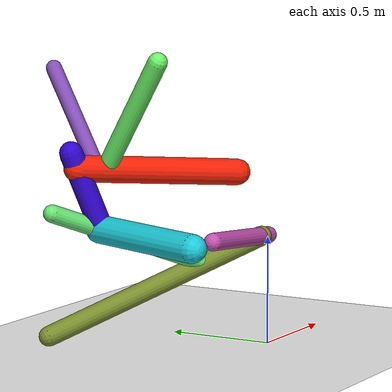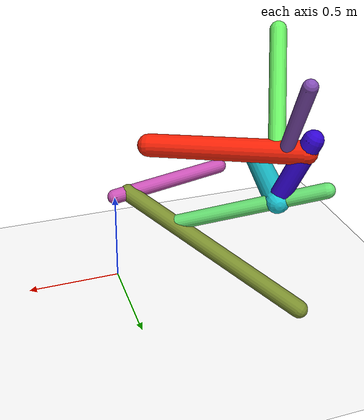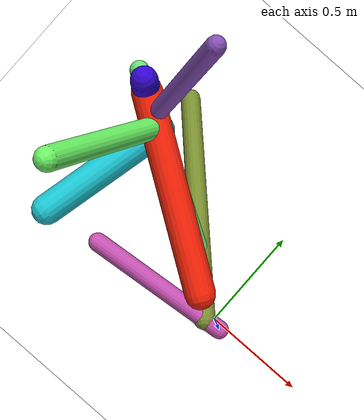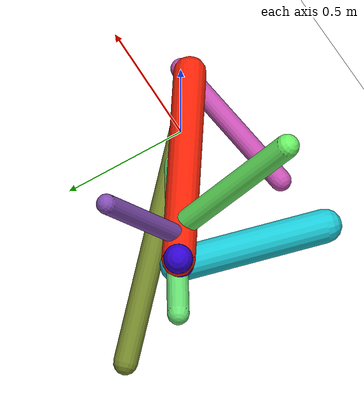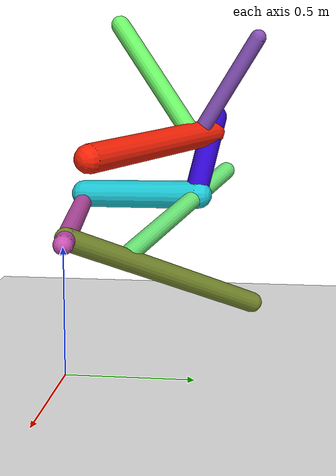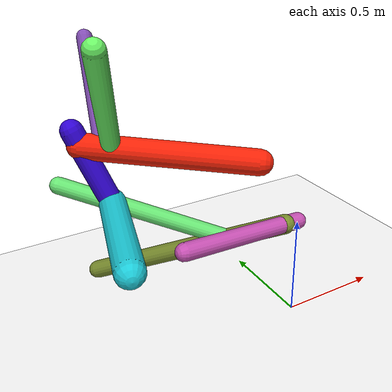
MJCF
<mujoco model="morphology">
  <option timestep="0.01"/>
  <default>
    <default class="/"/>
    <default class="0/"/>
    <default class="0/1/"/>
    <default class="0/1/2/"/>
    <default class="0/1/2/3/"/>
    <default class="0/1/2/3/4/"/>
    <default class="0/1/2/3/4/5/"/>
    <default class="0/1/2/3/4/5/6/"/>
    <default class="0/1/2/3/4/5/7/"/>
  </default>
  <asset>
    <texture name="texplane" type="2d" builtin="checker" rgb1="0.10000000000000001 0.20000000000000001 0.29999999999999999" rgb2="0.20000000000000001 0.29999999999999999 0.40000000000000002" width="300" height="300"/>
    <material name="MatPlane" class="/" texture="texplane" texrepeat="20 20" specular="1" shininess="1" reflectance="0.5"/>
  </asset>
  <worldbody>
    <light name="//unnamed_light_0" class="/" directional="true" pos="0 0 1.5" dir="0 0 -1.3" cutoff="100" exponent="1" diffuse="1 1 1" specular="0.10000000000000001 0.10000000000000001 0.10000000000000001"/>
    <geom name="ground" class="/" type="plane" size="15 15 0.5" material="MatPlane" rgba="1 1 1 1"/>
    <site name="body" class="/" size="9.9999999999999995e-07 9.9999999999999995e-07 9.9999999999999995e-07" pos="0 0 0.50926620364189146"/>
    <body pos="0 0 0.50926620364189146" name="0/">
      <freejoint name="0/"/>
      <geom name="0/geom" class="0/" type="capsule" contype="1" conaffinity="1" condim="3" size="0.039697990379565742" rgba="0.77191309984216805 0.31339932554767991 0.69538231415305096 1" friction="0.59999999999999998 0.10000000000000001 0.10000000000000001" fromto="0 0 0 -0.61678214636162665 -0.055614258357240542 0.062218150887570434"/>
      <site name="0/end0" class="0/" size="0.0050000000000000001" pos="-0.61678214636162665 -0.055614258357240542 0.062218150887570434"/>
      <site name="0/attach1" class="0/" size="9.9999999999999995e-07 9.9999999999999995e-07 9.9999999999999995e-07" pos="-0.076657900007399082 -0.0069121200755953753 0.0077328969677864529"/>
      <body pos="-0.076657900007399082 -0.0069121200755953753 0.0077328969677864529" name="0/1/">
        <joint name="0/1/joint/" class="0/" type="hinge" axis="0 0 1" limited="true" range="-51.834454337904951 51.834454337904951"/>
        <geom name="0/1/geom" class="0/1/" type="capsule" contype="1" conaffinity="1" condim="3" size="0.046199711530168316" rgba="0.46847478030595613 0.54351536301901071 0.17514898165833404 1" friction="0.59999999999999998 0.10000000000000001 0.10000000000000001" fromto="0 0 0 -0.69264621485595868 0.70895976951741724 -0.41699910496113934"/>
        <site name="0/1/end1" class="0/1/" size="0.0050000000000000001" pos="-0.69264621485595868 0.70895976951741724 -0.41699910496113934"/>
        <site name="0/1/attach2" class="0/1/" size="9.9999999999999995e-07 9.9999999999999995e-07 9.9999999999999995e-07" pos="-0.18919993059344806 0.19365606323877296 -0.11390548309368098"/>
        <body pos="-0.18919993059344806 0.19365606323877296 -0.11390548309368098" name="0/1/2/">
          <geom name="0/1/2/geom" class="0/1/2/" type="capsule" contype="1" conaffinity="1" condim="3" size="0.039992045156183702" rgba="0.40025022722586778 0.87621585579143457 0.44360763793030944 1" friction="0.59999999999999998 0.10000000000000001 0.10000000000000001" fromto="0 0 0 -0.66644710569887111 0.38414803359410232 0.28701319249144452"/>
          <site name="0/1/2/end2" class="0/1/2/" size="0.0050000000000000001" pos="-0.66644710569887111 0.38414803359410232 0.28701319249144452"/>
          <site name="0/1/2/attach3" class="0/1/2/" size="9.9999999999999995e-07 9.9999999999999995e-07 9.9999999999999995e-07" pos="-0.46301092460900339 0.26688500062524484 0.19940103647248941"/>
          <body pos="-0.46301092460900339 0.26688500062524484 0.19940103647248941" name="0/1/2/3/">
            <geom name="0/1/2/3/geom" class="0/1/2/3/" type="capsule" contype="1" conaffinity="1" condim="3" size="0.0633653360712223" rgba="0.10761285621000127 0.77954358431080628 0.83106646544172413 1" friction="0.59999999999999998 0.10000000000000001 0.10000000000000001" fromto="0 0 0 -0.13224240715178315 -0.5464380387104506 -0.021047904030660591"/>
            <site name="0/1/2/3/end3" class="0/1/2/3/" size="0.0050000000000000001" pos="-0.13224240715178315 -0.5464380387104506 -0.021047904030660591"/>
            <site name="0/1/2/3/attach4" class="0/1/2/3/" size="9.9999999999999995e-07 9.9999999999999995e-07 9.9999999999999995e-07" pos="-0.0027105686376064776 -0.011200324026344449 -0.00043141825516967145"/>
            <body pos="-0.0027105686376064776 -0.011200324026344449 -0.00043141825516967145" name="0/1/2/3/4/">
              <joint name="0/1/2/3/4/joint/" class="0/1/2/3/" type="hinge" axis="0.97198248587781899 -0.2348791093802956 -0.0090471610737610057" limited="true" range="-66.717070539056664 66.717070539056664"/>
              <geom name="0/1/2/3/4/geom" class="0/1/2/3/4/" type="capsule" contype="1" conaffinity="1" condim="3" size="0.052046953672847035" rgba="0.1919693121078947 0.012893229343125312 0.81444246233969908 1" friction="0.59999999999999998 0.10000000000000001 0.10000000000000001" fromto="0 0 0 -0.11978150261055842 0.080623465296349339 0.34755831763176537"/>
              <site name="0/1/2/3/4/end4" class="0/1/2/3/4/" size="0.0050000000000000001" pos="-0.11978150261055842 0.080623465296349339 0.34755831763176537"/>
              <site name="0/1/2/3/4/attach5" class="0/1/2/3/4/" size="9.9999999999999995e-07 9.9999999999999995e-07 9.9999999999999995e-07" pos="-0.095962802138715039 0.064591389149004932 0.27844591476699193"/>
              <body pos="-0.095962802138715039 0.064591389149004932 0.27844591476699193" name="0/1/2/3/4/5/">
                <joint name="0/1/2/3/4/5/joint/" class="0/1/2/3/4/" type="hinge" axis="-0.9480015509428148 -0.071918785468041785 -0.31003346223725553" limited="true" range="-53.398172135570917 53.398172135570917"/>
                <geom name="0/1/2/3/4/5/geom" class="0/1/2/3/4/5/" type="capsule" contype="1" conaffinity="1" condim="3" size="0.060173865892227105" rgba="0.95811108327752792 0.13304740852634978 0.026541840247183757 1" friction="0.59999999999999998 0.10000000000000001 0.10000000000000001" fromto="0 0 0 0.65292398047190647 -0.43960609009905643 -0.062064873039676338"/>
                <site name="0/1/2/3/4/5/end5" class="0/1/2/3/4/5/" size="0.0050000000000000001" pos="0.65292398047190647 -0.43960609009905643 -0.062064873039676338"/>
                <site name="0/1/2/3/4/5/attach6" class="0/1/2/3/4/5/" size="9.9999999999999995e-07 9.9999999999999995e-07 9.9999999999999995e-07" pos="0.11395095829960913 -0.07672184931073639 -0.01083181499093216"/>
                <body pos="0.11395095829960913 -0.07672184931073639 -0.01083181499093216" name="0/1/2/3/4/5/6/">
                  <joint name="0/1/2/3/4/5/6/joint/" class="0/1/2/3/4/5/" type="hinge" axis="0.56229046224813073 0.81881945950611534 0.11560332520691922" limited="true" range="-40.697028226731803 40.697028226731803"/>
                  <geom name="0/1/2/3/4/5/6/geom" class="0/1/2/3/4/5/6/" type="capsule" contype="1" conaffinity="1" condim="3" size="0.043108894366503211" rgba="0.41262340507314854 0.94554387597428635 0.38983813038975679 1" friction="0.59999999999999998 0.10000000000000001 0.10000000000000001" fromto="0 0 0 -0.13484457865030663 -0.34600480806667283 0.49592791637488109"/>
                  <site name="0/1/2/3/4/5/6/end6" class="0/1/2/3/4/5/6/" size="0.0050000000000000001" pos="-0.13484457865030663 -0.34600480806667283 0.49592791637488109"/>
                </body>
                <site name="0/1/2/3/4/5/attach7" class="0/1/2/3/4/5/" size="9.9999999999999995e-07 9.9999999999999995e-07 9.9999999999999995e-07" pos="0.080638359693358502 -0.054292865750125339 -0.0076652255181051537"/>
                <body pos="0.080638359693358502 -0.054292865750125339 -0.0076652255181051537" name="0/1/2/3/4/5/7/">
                  <joint name="0/1/2/3/4/5/7/joint/" class="0/1/2/3/4/5/" type="hinge" axis="0.56229046224813073 0.81881945950611534 0.11560332520691922" limited="true" range="-31.788621561884419 31.788621561884419"/>
                  <geom name="0/1/2/3/4/5/7/geom" class="0/1/2/3/4/5/7/" type="capsule" contype="1" conaffinity="1" condim="3" size="0.035674905934497479" rgba="0.50879832408006442 0.30354253837202927 0.70293119666389392 1" friction="0.59999999999999998 0.10000000000000001 0.10000000000000001" fromto="0 0 0 0.055510459926269018 0.26167797201255283 0.42846861408171666"/>
                  <site name="0/1/2/3/4/5/7/end7" class="0/1/2/3/4/5/7/" size="0.0050000000000000001" pos="0.055510459926269018 0.26167797201255283 0.42846861408171666"/>
                </body>
              </body>
            </body>
          </body>
        </body>
      </body>
      <camera name="0/iso" class="0/" mode="trackcom" pos="-2.2999999999999998 -2.2999999999999998 1" xyaxes="0.45000000000000001 -0.45000000000000001 0 0.29999999999999999 0.14999999999999999 0.93999999999999995"/>
    </body>
  </worldbody>
  <actuator>
    <motor name="0/1/motor" class="0/1/" ctrllimited="true" ctrlrange="-1 1" gear="52" joint="0/1/joint/"/>
    <motor name="0/1/2/3/4/motor" class="0/1/2/3/4/" ctrllimited="true" ctrlrange="-1 1" gear="65" joint="0/1/2/3/4/joint/"/>
    <motor name="0/1/2/3/4/5/motor" class="0/1/2/3/4/5/" ctrllimited="true" ctrlrange="-1 1" gear="94" joint="0/1/2/3/4/5/joint/"/>
    <motor name="0/1/2/3/4/5/6/motor" class="0/1/2/3/4/5/6/" ctrllimited="true" ctrlrange="-1 1" gear="95" joint="0/1/2/3/4/5/6/joint/"/>
    <motor name="0/1/2/3/4/5/7/motor" class="0/1/2/3/4/5/7/" ctrllimited="true" ctrlrange="-1 1" gear="66" joint="0/1/2/3/4/5/7/joint/"/>
  </actuator>
  <sensor>
    <subtreelinvel name="velocity" body="0/"/>
  </sensor>
</mujoco>
